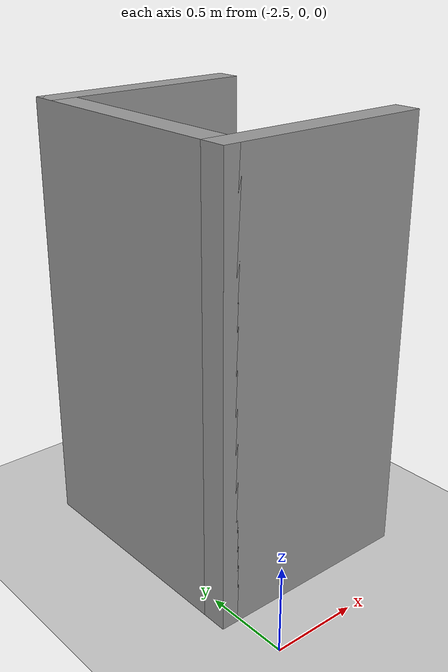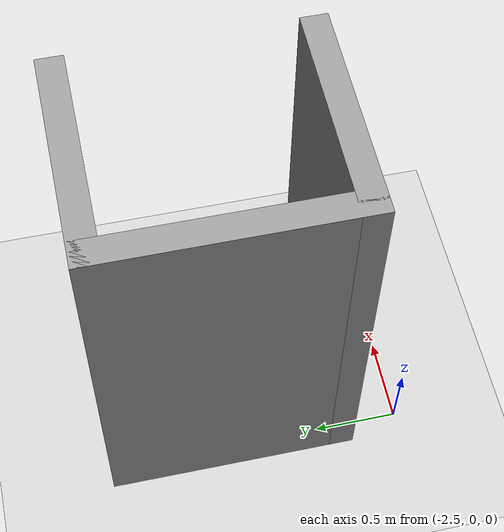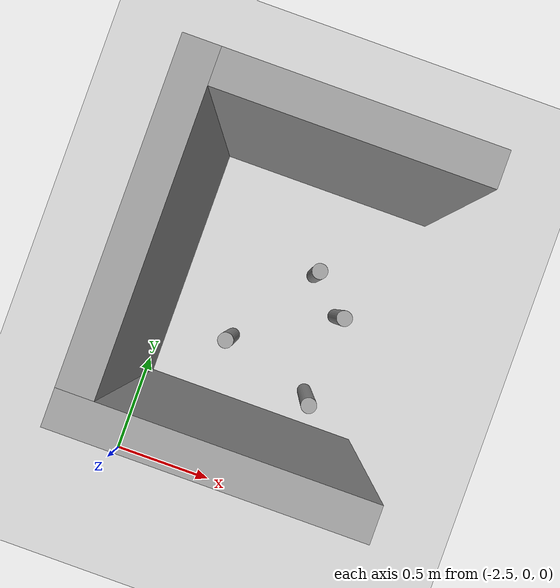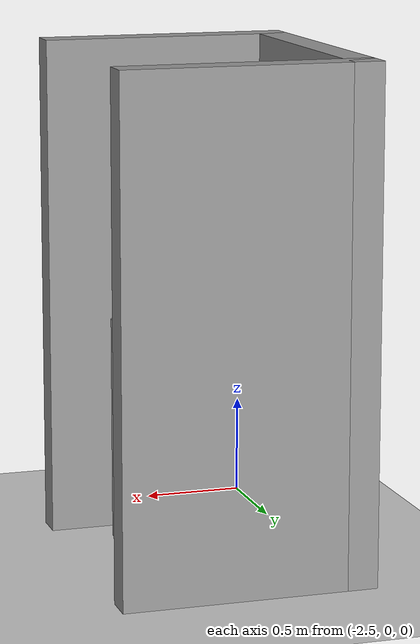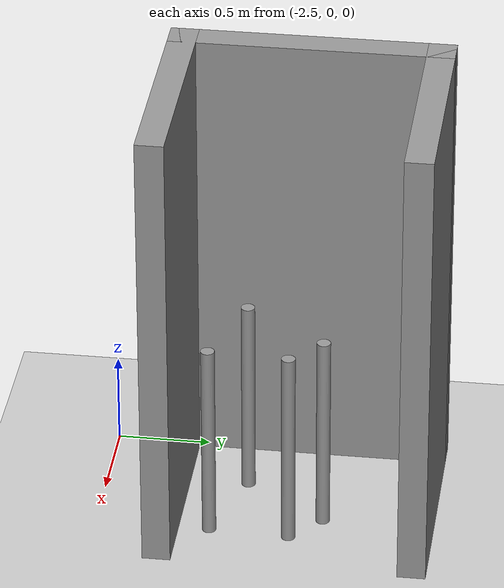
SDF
<sdf version="1.6">
 <world name="default">
  <scene><ambient>0.4 0.4 0.4 1</ambient><background>0.7 0.7 0.7 1</background><shadows>1</shadows></scene>
  <light name="sun" type="directional">
   <pose>0 0 10 0 -0 0</pose>
   <diffuse>0.8 0.8 0.8 1</diffuse>
   <specular>0.2 0.2 0.2 1</specular>
   <attenuation>
    <range>1000</range>
    <constant>0.9</constant>
    <linear>0.01</linear>
    <quadratic>0.001</quadratic>
   </attenuation>
   <direction>-0.5 0.1 -0.9</direction>
  </light>
  <model name="ground_plane">
   <static>1</static>
   <link name="link">
    <collision name="collision">
     <geometry><plane><normal>0 0 1</normal><size>100 100</size></plane></geometry>
     <surface>
      <contact><collide_bitmask>65535</collide_bitmask></contact>
      <friction><ode><mu>100</mu><mu2>50</mu2></ode></friction>
     </surface>
    </collision>
    <visual name="visual">
     <cast_shadows>0</cast_shadows>
     <geometry><plane><normal>0 0 1</normal><size>100 100</size></plane></geometry>
     <material>
      <script><uri>file://media/materials/scripts/gazebo.material</uri><name>Gazebo/Grey</name></script>
     </material>
    </visual>
   </link>
  </model>
  <physics name="default_physics" default="0" type="ode">
   <real_time_update_rate>1000</real_time_update_rate>
   <max_step_size>0.001</max_step_size>
   <real_time_factor>1</real_time_factor>
   <ode>
    <solver>
     <type>quick</type>
     <iters>150</iters>
     <precon_iters>0</precon_iters>
     <sor>1.4</sor>
     <use_dynamic_moi_rescaling>1</use_dynamic_moi_rescaling>
    </solver>
    <constraints>
     <cfm>1e-05</cfm>
     <erp>0.2</erp>
     <contact_max_correcting_vel>2000</contact_max_correcting_vel>
     <contact_surface_layer>0.01</contact_surface_layer>
    </constraints>
   </ode>
  </physics>
  <gravity>0 0 -9.8</gravity>
  <magnetic_field>6e-06 2.3e-05 -4.2e-05</magnetic_field>
  <atmosphere type="adiabatic"/>
  <audio><device>default</device></audio>
  <spherical_coordinates>
   <surface_model>EARTH_WGS84</surface_model>
   <latitude_deg>0</latitude_deg>
   <longitude_deg>0</longitude_deg>
   <elevation>0</elevation>
   <heading_deg>0</heading_deg>
  </spherical_coordinates>
  <model name="cave">
   <pose>-1.99025 1.04874 0 0 -0 0</pose>
   <link name="Wall_17">
    <collision name="Wall_17_Collision">
     <geometry><box><size>1.25 0.15 2.5</size></box></geometry>
     <pose>0 0 1.25 0 -0 0</pose>
    </collision>
    <visual name="Wall_17_Visual">
     <pose>0 0 1.25 0 -0 0</pose>
     <geometry><box><size>1.25 0.15 2.5</size></box></geometry>
     <material>
      <script><uri>file://media/materials/scripts/gazebo.material</uri><name>Gazebo/Grey</name></script>
      <ambient>1 1 1 1</ambient>
     </material>
     <meta><layer>0</layer></meta>
    </visual>
    <pose>0 -0.675 0 0 -0 0</pose>
   </link>
   <link name="Wall_19">
    <collision name="Wall_19_Collision">
     <geometry><box><size>1.5 0.15 2.5</size></box></geometry>
     <pose>0 0 1.25 0 -0 0</pose>
    </collision>
    <visual name="Wall_19_Visual">
     <pose>0 0 1.25 0 -0 0</pose>
     <geometry><box><size>1.5 0.15 2.5</size></box></geometry>
     <material>
      <script><uri>file://media/materials/scripts/gazebo.material</uri><name>Gazebo/Grey</name></script>
      <ambient>1 1 1 1</ambient>
     </material>
     <meta><layer>0</layer></meta>
    </visual>
    <pose>-0.55 0 0 0 -0 1.5708</pose>
   </link>
   <link name="Wall_20">
    <collision name="Wall_20_Collision">
     <geometry><box><size>1.25 0.15 2.5</size></box></geometry>
     <pose>0 0 1.25 0 -0 0</pose>
    </collision>
    <visual name="Wall_20_Visual">
     <pose>0 0 1.25 0 -0 0</pose>
     <geometry><box><size>1.25 0.15 2.5</size></box></geometry>
     <material>
      <script><uri>file://media/materials/scripts/gazebo.material</uri><name>Gazebo/Grey</name></script>
      <ambient>1 1 1 1</ambient>
     </material>
     <meta><layer>0</layer></meta>
    </visual>
    <pose>0 0.675 0 0 -0 0</pose>
   </link>
   <static>1</static>
  </model>
  <model name="cylinder">
   <link name="link">
    <inertial>
     <mass>2.59439</mass>
     <inertia>
      <ixx>0.27214</ixx>
      <ixy>0</ixy>
      <ixz>0</ixz>
      <iyy>0.27214</iyy>
      <iyz>0</iyz>
      <izz>0.00177193</izz>
     </inertia>
    </inertial>
    <visual name="visual">
     <geometry><cylinder><radius>0.0369589</radius><length>1.12011</length></cylinder></geometry>
     <material>
      <script><name>Gazebo/Grey</name><uri>file://media/materials/scripts/gazebo.material</uri></script>
     </material>
    </visual>
    <collision name="collision">
     <geometry><cylinder><radius>0.036959</radius><length>1.12011</length></cylinder></geometry>
     <surface>
      <friction>
       <ode><mu>1</mu><mu2>1</mu2><fdir1>0 0 0</fdir1><slip1>0</slip1><slip2>0</slip2></ode>
       <torsional>
        <coefficient>1</coefficient>
        <patch_radius>0</patch_radius>
        <surface_radius>0</surface_radius>
        <use_patch_radius>1</use_patch_radius>
        <ode><slip>0</slip></ode>
       </torsional>
      </friction>
      <bounce><restitution_coefficient>0</restitution_coefficient><threshold>1e+06</threshold></bounce>
      <contact>
       <collide_without_contact>0</collide_without_contact>
       <collide_without_contact_bitmask>1</collide_without_contact_bitmask>
       <collide_bitmask>1</collide_bitmask>
       <ode>
        <soft_cfm>0</soft_cfm>
        <soft_erp>0.2</soft_erp>
        <kp>1e+13</kp>
        <kd>1</kd>
        <max_vel>0.01</max_vel>
        <min_depth>0</min_depth>
       </ode>
       <bullet>
        <split_impulse>1</split_impulse>
        <split_impulse_penetration_threshold>-0.01</split_impulse_penetration_threshold>
        <soft_cfm>0</soft_cfm>
        <soft_erp>0.2</soft_erp>
        <kp>1e+13</kp>
        <kd>1</kd>
       </bullet>
      </contact>
     </surface>
    </collision>
   </link>
   <static>0</static>
   <pose>-1.67523 0.612452 0.560046 0 -0 1.9e-05</pose>
  </model>
  <model name="cylinder_clone">
   <link name="link">
    <inertial>
     <mass>2.59439</mass>
     <inertia>
      <ixx>0.27214</ixx>
      <ixy>0</ixy>
      <ixz>0</ixz>
      <iyy>0.27214</iyy>
      <iyz>0</iyz>
      <izz>0.00177193</izz>
     </inertia>
    </inertial>
    <visual name="visual">
     <geometry><cylinder><radius>0.0369589</radius><length>1.12011</length></cylinder></geometry>
     <material>
      <script><name>Gazebo/Grey</name><uri>file://media/materials/scripts/gazebo.material</uri></script>
     </material>
    </visual>
    <collision name="collision">
     <geometry><cylinder><radius>0.036959</radius><length>1.12011</length></cylinder></geometry>
     <surface>
      <friction>
       <ode><mu>1</mu><mu2>1</mu2><fdir1>0 0 0</fdir1><slip1>0</slip1><slip2>0</slip2></ode>
       <torsional>
        <coefficient>1</coefficient>
        <patch_radius>0</patch_radius>
        <surface_radius>0</surface_radius>
        <use_patch_radius>1</use_patch_radius>
        <ode><slip>0</slip></ode>
       </torsional>
      </friction>
      <bounce><restitution_coefficient>0</restitution_coefficient><threshold>1e+06</threshold></bounce>
      <contact>
       <collide_without_contact>0</collide_without_contact>
       <collide_without_contact_bitmask>1</collide_without_contact_bitmask>
       <collide_bitmask>1</collide_bitmask>
       <ode>
        <soft_cfm>0</soft_cfm>
        <soft_erp>0.2</soft_erp>
        <kp>1e+13</kp>
        <kd>1</kd>
        <max_vel>0.01</max_vel>
        <min_depth>0</min_depth>
       </ode>
       <bullet>
        <split_impulse>1</split_impulse>
        <split_impulse_penetration_threshold>-0.01</split_impulse_penetration_threshold>
        <soft_cfm>0</soft_cfm>
        <soft_erp>0.2</soft_erp>
        <kp>1e+13</kp>
        <kd>1</kd>
       </bullet>
      </contact>
     </surface>
    </collision>
   </link>
   <static>0</static>
   <pose>-2.1303 0.763462 0.560046 0 -0 2e-05</pose>
  </model>
  <model name="cylinder_clone_0">
   <link name="link">
    <inertial>
     <mass>2.59439</mass>
     <inertia>
      <ixx>0.27214</ixx>
      <ixy>0</ixy>
      <ixz>0</ixz>
      <iyy>0.27214</iyy>
      <iyz>0</iyz>
      <izz>0.00177193</izz>
     </inertia>
    </inertial>
    <visual name="visual">
     <geometry><cylinder><radius>0.0369589</radius><length>1.12011</length></cylinder></geometry>
     <material>
      <script><name>Gazebo/Grey</name><uri>file://media/materials/scripts/gazebo.material</uri></script>
     </material>
    </visual>
    <collision name="collision">
     <geometry><cylinder><radius>0.036959</radius><length>1.12011</length></cylinder></geometry>
     <surface>
      <friction>
       <ode><mu>1</mu><mu2>1</mu2><fdir1>0 0 0</fdir1><slip1>0</slip1><slip2>0</slip2></ode>
       <torsional>
        <coefficient>1</coefficient>
        <patch_radius>0</patch_radius>
        <surface_radius>0</surface_radius>
        <use_patch_radius>1</use_patch_radius>
        <ode><slip>0</slip></ode>
       </torsional>
      </friction>
      <bounce><restitution_coefficient>0</restitution_coefficient><threshold>1e+06</threshold></bounce>
      <contact>
       <collide_without_contact>0</collide_without_contact>
       <collide_without_contact_bitmask>1</collide_without_contact_bitmask>
       <collide_bitmask>1</collide_bitmask>
       <ode>
        <soft_cfm>0</soft_cfm>
        <soft_erp>0.2</soft_erp>
        <kp>1e+13</kp>
        <kd>1</kd>
        <max_vel>0.01</max_vel>
        <min_depth>0</min_depth>
       </ode>
       <bullet>
        <split_impulse>1</split_impulse>
        <split_impulse_penetration_threshold>-0.01</split_impulse_penetration_threshold>
        <soft_cfm>0</soft_cfm>
        <soft_erp>0.2</soft_erp>
        <kp>1e+13</kp>
        <kd>1</kd>
       </bullet>
      </contact>
     </surface>
    </collision>
   </link>
   <static>0</static>
   <pose>-1.83288 1.20222 0.560046 0 -0 2e-05</pose>
  </model>
  <model name="cylinder_clone_1">
   <link name="link">
    <inertial>
     <mass>2.59439</mass>
     <inertia>
      <ixx>0.27214</ixx>
      <ixy>0</ixy>
      <ixz>0</ixz>
      <iyy>0.27214</iyy>
      <iyz>0</iyz>
      <izz>0.00177193</izz>
     </inertia>
    </inertial>
    <visual name="visual">
     <geometry><cylinder><radius>0.0369589</radius><length>1.12011</length></cylinder></geometry>
     <material>
      <script><name>Gazebo/Grey</name><uri>file://media/materials/scripts/gazebo.material</uri></script>
     </material>
    </visual>
    <collision name="collision">
     <geometry><cylinder><radius>0.036959</radius><length>1.12011</length></cylinder></geometry>
     <surface>
      <friction>
       <ode><mu>1</mu><mu2>1</mu2><fdir1>0 0 0</fdir1><slip1>0</slip1><slip2>0</slip2></ode>
       <torsional>
        <coefficient>1</coefficient>
        <patch_radius>0</patch_radius>
        <surface_radius>0</surface_radius>
        <use_patch_radius>1</use_patch_radius>
        <ode><slip>0</slip></ode>
       </torsional>
      </friction>
      <bounce><restitution_coefficient>0</restitution_coefficient><threshold>1e+06</threshold></bounce>
      <contact>
       <collide_without_contact>0</collide_without_contact>
       <collide_without_contact_bitmask>1</collide_without_contact_bitmask>
       <collide_bitmask>1</collide_bitmask>
       <ode>
        <soft_cfm>0</soft_cfm>
        <soft_erp>0.2</soft_erp>
        <kp>1e+13</kp>
        <kd>1</kd>
        <max_vel>0.01</max_vel>
        <min_depth>0</min_depth>
       </ode>
       <bullet>
        <split_impulse>1</split_impulse>
        <split_impulse_penetration_threshold>-0.01</split_impulse_penetration_threshold>
        <soft_cfm>0</soft_cfm>
        <soft_erp>0.2</soft_erp>
        <kp>1e+13</kp>
        <kd>1</kd>
       </bullet>
      </contact>
     </surface>
    </collision>
   </link>
   <static>0</static>
   <pose>-1.65601 1.03857 0.560046 0 -0 2e-05</pose>
  </model>
 </world>
</sdf>
